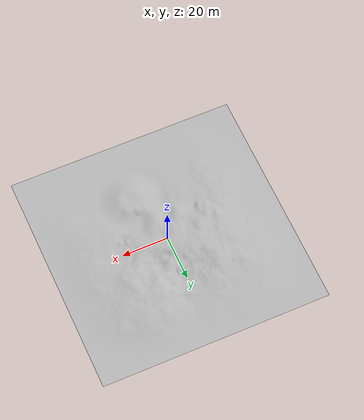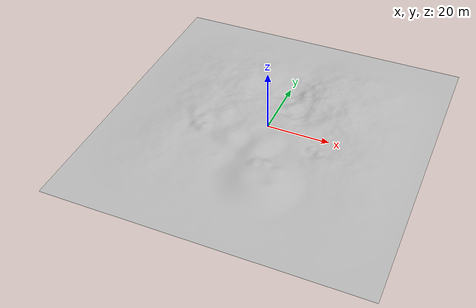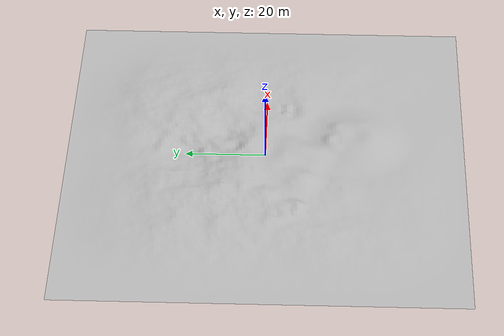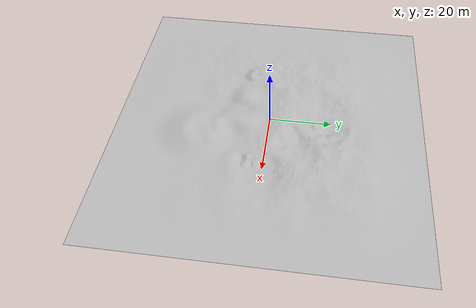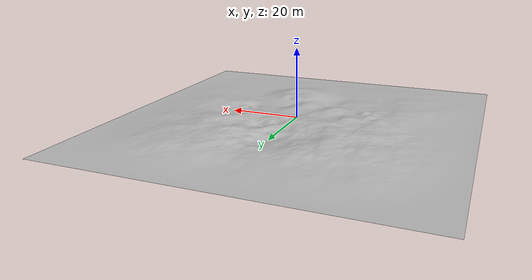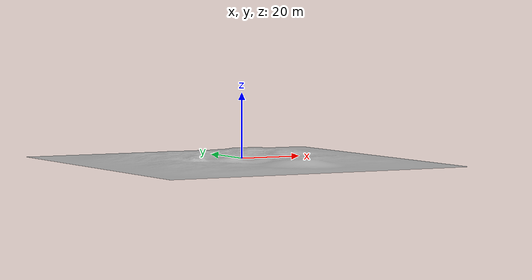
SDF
<?xml version="1.0" ?>
<!-- Copyright (c) TODO
Based on https://github.com/uuvsimulator/uuv_simulator/tree/master/uuv_gazebo_worlds
-->
<sdf version="1.5">
  <model name="seafloor">
    <static>true</static>

    <link name="link">
      <collision name="collision">
        <pose>0 0 0 0 0 0</pose>
        <geometry>
          <mesh>
            <uri>model://seafloors/gas_infrastructure_seafloor/model.obj</uri>
            <scale>1.0 1.0 1.0</scale>
          </mesh>
        </geometry>
      </collision>

      <visual name="visual">
        <cast_shadows>true</cast_shadows>
        <pose>0 0 0 0 0 0</pose>
        <geometry>
          <mesh>
            <uri>model://seafloors/gas_infrastructure_seafloor/model.obj</uri>
            <scale>1.0 1.0 1.0</scale>
          </mesh>
        </geometry>
        <material>
          <script>
            <uri>file://materials/scripts/sand.material</uri>
            <name>UUVSimulator/SandAndStones</name>
          </script>
        </material>
      </visual>
    </link>

  </model>
</sdf>
